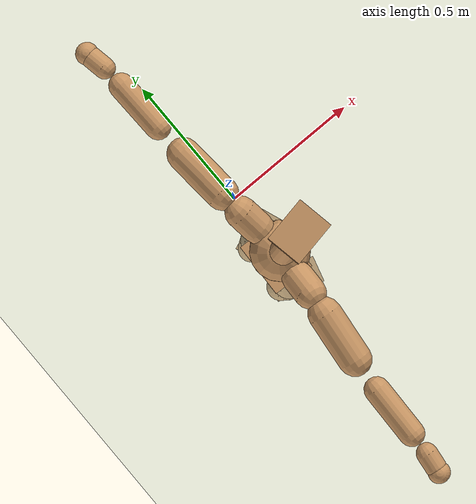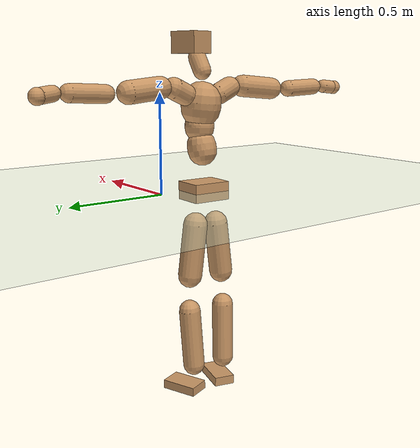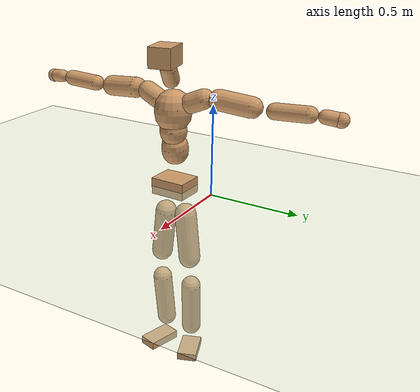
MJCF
<mujoco model="humanoid">
  <compiler coordinate="local" angle="radian"/>
  <default>
    <joint damping="0.0" armature="0.01" stiffness="0.0" limited="true"/>
    <geom conaffinity="1" condim="3" contype="7" margin="0.001" rgba="0.8 0.6 .4 1"/>
  </default>
  <asset>
    <texture type="skybox" builtin="gradient" rgb1=".4 .5 .6" rgb2="0 0 0" width="100" height="100"/>
    <texture builtin="flat" height="1278" mark="cross" markrgb="1 1 1" name="texgeom" random="0.01" rgb1="0.8 0.6 0.4" rgb2="0.8 0.6 0.4" type="cube" width="127"/>
    <texture builtin="checker" height="100" name="texplane" rgb1="0 0 0" rgb2="0.8 0.8 0.8" type="2d" width="100"/>
    <material name="MatPlane" reflectance="0.5" shininess="1" specular="1" texrepeat="60 60" texture="texplane"/>
    <material name="geom" texture="texgeom" texuniform="true"/>
  </asset>
  <worldbody>
    <light cutoff="100" diffuse="1 1 1" dir="-0 0 -1.3" directional="true" exponent="1" pos="0 0 1.3" specular=".1 .1 .1"/>
    <geom conaffinity="1" condim="3" name="floor" pos="0 0 0" rgba="0.8 0.9 0.8 1" size="100 100 .2" type="plane" material="MatPlane"/>
    <body name="Pelvis" pos="-0.0051 -0.249 0.0088">
      <freejoint name="Pelvis"/>
      <geom type="box" contype="1" conaffinity="1" density="500" pos="-0.0132 0.0005 -0.0093" size="0.0788 0.1017 0.0467" quat="0.9998 0.0000 0.0000 -0.0180" name="Pelvis"/>
      <body name="L_Hip" pos="-0.0287 0.0541 -0.089">
        <joint name="L_Hip_x" type="hinge" pos="0 0 0" axis="1 0 0" stiffness="800" damping="80" armature="0.02" range="-180.0000 180.0000"/>
        <joint name="L_Hip_y" type="hinge" pos="0 0 0" axis="0 1 0" stiffness="800" damping="80" armature="0.02" range="-180.0000 180.0000"/>
        <joint name="L_Hip_z" type="hinge" pos="0 0 0" axis="0 0 1" stiffness="800" damping="80" armature="0.02" range="-180.0000 180.0000"/>
        <geom type="capsule" contype="1" conaffinity="1" density="500" fromto="0.0020 0.0105 -0.0904 0.0081 0.0422 -0.3617" size="0.062" name="L_Hip"/>
        <body name="L_Knee" pos="0.0101 0.0527 -0.4521">
          <joint name="L_Knee_x" type="hinge" pos="0 0 0" axis="1 0 0" stiffness="800" damping="80" armature="0.02" range="-180.0000 180.0000"/>
          <joint name="L_Knee_y" type="hinge" pos="0 0 0" axis="0 1 0" stiffness="800" damping="80" armature="0.02" range="-180.0000 180.0000"/>
          <joint name="L_Knee_z" type="hinge" pos="0 0 0" axis="0 0 1" stiffness="800" damping="80" armature="0.02" range="-180.0000 180.0000"/>
          <geom type="capsule" contype="1" conaffinity="1" density="500" fromto="-0.0077 -0.0030 -0.0993 -0.0309 -0.0121 -0.3971" size="0.0561" name="L_Knee"/>
          <body name="L_Ankle" pos="-0.0386 -0.0151 -0.4964">
            <joint name="L_Ankle_x" type="hinge" pos="0 0 0" axis="1 0 0" stiffness="800" damping="80" armature="0.02" range="-180.0000 180.0000"/>
            <joint name="L_Ankle_y" type="hinge" pos="0 0 0" axis="0 1 0" stiffness="800" damping="80" armature="0.02" range="-180.0000 180.0000"/>
            <joint name="L_Ankle_z" type="hinge" pos="0 0 0" axis="0 0 1" stiffness="800" damping="80" armature="0.02" range="-180.0000 180.0000"/>
            <geom type="box" contype="1" conaffinity="1" density="500" pos="0.0663 0.0249 -0.0347" size="0.0946 0.0573 0.0229" quat="0.9839 0.0000 0.0000 0.1789" name="L_Ankle"/>
            <body name="L_Toe" pos="0.1325 0.0499 -0.0693">
              <joint name="L_Toe_x" type="hinge" pos="0 0 0" axis="1 0 0" stiffness="500" damping="50" armature="0.02" range="-180.0000 180.0000"/>
              <joint name="L_Toe_y" type="hinge" pos="0 0 0" axis="0 1 0" stiffness="500" damping="50" armature="0.02" range="-180.0000 180.0000"/>
              <joint name="L_Toe_z" type="hinge" pos="0 0 0" axis="0 0 1" stiffness="500" damping="50" armature="0.02" range="-180.0000 180.0000"/>
              <geom type="box" contype="1" conaffinity="1" density="500" pos="0.0000 0.0000 0.0365" size="0.0011 0.0027 0.0012" quat="0.9831 0.0000 0.0000 0.1829" name="L_Toe"/>
            </body>
          </body>
        </body>
      </body>
      <body name="R_Hip" pos="-0.0252 -0.0565 -0.0982">
        <joint name="R_Hip_x" type="hinge" pos="0 0 0" axis="1 0 0" stiffness="800" damping="80" armature="0.02" range="-180.0000 180.0000"/>
        <joint name="R_Hip_y" type="hinge" pos="0 0 0" axis="0 1 0" stiffness="800" damping="80" armature="0.02" range="-180.0000 180.0000"/>
        <joint name="R_Hip_z" type="hinge" pos="0 0 0" axis="0 0 1" stiffness="800" damping="80" armature="0.02" range="-180.0000 180.0000"/>
        <geom type="capsule" contype="1" conaffinity="1" density="500" fromto="-0.0012 -0.0107 -0.0897 -0.0049 -0.0429 -0.3586" size="0.061" name="R_Hip"/>
        <body name="R_Knee" pos="-0.0062 -0.0537 -0.4483">
          <joint name="R_Knee_x" type="hinge" pos="0 0 0" axis="1 0 0" stiffness="800" damping="80" armature="0.02" range="-180.0000 180.0000"/>
          <joint name="R_Knee_y" type="hinge" pos="0 0 0" axis="0 1 0" stiffness="800" damping="80" armature="0.02" range="-180.0000 180.0000"/>
          <joint name="R_Knee_z" type="hinge" pos="0 0 0" axis="0 0 1" stiffness="800" damping="80" armature="0.02" range="-180.0000 180.0000"/>
          <geom type="capsule" contype="1" conaffinity="1" density="500" fromto="-0.0070 0.0045 -0.0981 -0.0282 0.0178 -0.3925" size="0.056" name="R_Knee"/>
          <body name="R_Ankle" pos="-0.0352 0.0223 -0.4906">
            <joint name="R_Ankle_x" type="hinge" pos="0 0 0" axis="1 0 0" stiffness="800" damping="80" armature="0.02" range="-180.0000 180.0000"/>
            <joint name="R_Ankle_y" type="hinge" pos="0 0 0" axis="0 1 0" stiffness="800" damping="80" armature="0.02" range="-180.0000 180.0000"/>
            <joint name="R_Ankle_z" type="hinge" pos="0 0 0" axis="0 0 1" stiffness="800" damping="80" armature="0.02" range="-180.0000 180.0000"/>
            <geom type="box" contype="1" conaffinity="1" density="500" pos="0.0719 -0.0197 -0.0359" size="0.0999 0.0541 0.0237" quat="0.9911 0.0000 0.0000 -0.1334" name="R_Ankle"/>
            <body name="R_Toe" pos="0.1439 -0.0395 -0.0719">
              <joint name="R_Toe_x" type="hinge" pos="0 0 0" axis="1 0 0" stiffness="500" damping="50" armature="0.02" range="-180.0000 180.0000"/>
              <joint name="R_Toe_y" type="hinge" pos="0 0 0" axis="0 1 0" stiffness="500" damping="50" armature="0.02" range="-180.0000 180.0000"/>
              <joint name="R_Toe_z" type="hinge" pos="0 0 0" axis="0 0 1" stiffness="500" damping="50" armature="0.02" range="-180.0000 180.0000"/>
              <geom type="box" contype="1" conaffinity="1" density="500" pos="0.0000 0.0000 0.0378" size="0.001 0.0026 0.0013" quat="0.9921 0.0000 0.0000 -0.1253" name="R_Toe"/>
            </body>
          </body>
        </body>
      </body>
      <body name="Torso" pos="-0.025 0.0052 0.1311">
        <joint name="Torso_x" type="hinge" pos="0 0 0" axis="1 0 0" stiffness="1000" damping="100" armature="0.02" range="-180.0000 180.0000"/>
        <joint name="Torso_y" type="hinge" pos="0 0 0" axis="0 1 0" stiffness="1000" damping="100" armature="0.02" range="-180.0000 180.0000"/>
        <joint name="Torso_z" type="hinge" pos="0 0 0" axis="0 0 1" stiffness="1000" damping="100" armature="0.02" range="-180.0000 180.0000"/>
        <geom type="capsule" contype="1" conaffinity="1" density="500" fromto="0.0210 0.0031 0.0928 0.0140 0.0021 0.0619" size="0.074" name="Torso"/>
        <body name="Spine" pos="0.0349 0.0052 0.1547">
          <joint name="Spine_x" type="hinge" pos="0 0 0" axis="1 0 0" stiffness="1000" damping="100" armature="0.02" range="-180.0000 180.0000"/>
          <joint name="Spine_y" type="hinge" pos="0 0 0" axis="0 1 0" stiffness="1000" damping="100" armature="0.02" range="-180.0000 180.0000"/>
          <joint name="Spine_z" type="hinge" pos="0 0 0" axis="0 0 1" stiffness="1000" damping="100" armature="0.02" range="-180.0000 180.0000"/>
          <geom type="capsule" contype="1" conaffinity="1" density="500" fromto="0.0011 -0.0013 0.0373 0.0007 -0.0008 0.0249" size="0.075" name="Spine"/>
          <body name="Chest" pos="0.0018 -0.0021 0.0622">
            <joint name="Chest_x" type="hinge" pos="0 0 0" axis="1 0 0" stiffness="1000" damping="100" armature="0.02" range="-180.0000 180.0000"/>
            <joint name="Chest_y" type="hinge" pos="0 0 0" axis="0 1 0" stiffness="1000" damping="100" armature="0.02" range="-180.0000 180.0000"/>
            <joint name="Chest_z" type="hinge" pos="0 0 0" axis="0 0 1" stiffness="1000" damping="100" armature="0.02" range="-180.0000 180.0000"/>
            <geom type="capsule" contype="1" conaffinity="1" density="500" fromto="-0.0097 -0.0050 0.0916 -0.0065 -0.0034 0.0610" size="0.1012" name="Chest"/>
            <body name="Neck" pos="-0.0157 -0.0157 0.2222">
              <joint name="Neck_x" type="hinge" pos="0 0 0" axis="1 0 0" stiffness="500" damping="50" armature="0.02" range="-180.0000 180.0000"/>
              <joint name="Neck_y" type="hinge" pos="0 0 0" axis="0 1 0" stiffness="500" damping="50" armature="0.02" range="-180.0000 180.0000"/>
              <joint name="Neck_z" type="hinge" pos="0 0 0" axis="0 0 1" stiffness="500" damping="50" armature="0.02" range="-180.0000 180.0000"/>
              <geom type="capsule" contype="1" conaffinity="1" density="500" fromto="0.0113 0.0018 0.0210 0.0453 0.0072 0.0841" size="0.0452" name="Neck"/>
              <body name="Head" pos="0.0566 0.009 0.1051">
                <joint name="Head_x" type="hinge" pos="0 0 0" axis="1 0 0" stiffness="500" damping="50" armature="0.02" range="-180.0000 180.0000"/>
                <joint name="Head_y" type="hinge" pos="0 0 0" axis="0 1 0" stiffness="500" damping="50" armature="0.02" range="-180.0000 180.0000"/>
                <joint name="Head_z" type="hinge" pos="0 0 0" axis="0 0 1" stiffness="500" damping="50" armature="0.02" range="-180.0000 180.0000"/>
                <geom type="box" contype="1" conaffinity="1" density="500" pos="0.0293 0.0055 0.0535" size="0.0792 0.0632 0.0541" quat="0.9957 0.0000 0.0000 0.0922" name="Head"/>
              </body>
            </body>
            <body name="L_Thorax" pos="-0.0139 0.0748 0.1191">
              <joint name="L_Thorax_x" type="hinge" pos="0 0 0" axis="1 0 0" stiffness="500" damping="50" armature="0.02" range="-180.0000 180.0000"/>
              <joint name="L_Thorax_y" type="hinge" pos="0 0 0" axis="0 1 0" stiffness="500" damping="50" armature="0.02" range="-180.0000 180.0000"/>
              <joint name="L_Thorax_z" type="hinge" pos="0 0 0" axis="0 0 1" stiffness="500" damping="50" armature="0.02" range="-180.0000 180.0000"/>
              <geom type="capsule" contype="1" conaffinity="1" density="500" fromto="-0.0032 0.0245 0.0105 -0.0130 0.0981 0.0419" size="0.0542" name="L_Thorax"/>
              <body name="L_Shoulder" pos="-0.0162 0.1226 0.0523">
                <joint name="L_Shoulder_x" type="hinge" pos="0 0 0" axis="1 0 0" stiffness="500" damping="50" armature="0.02" range="-720.0000 720.0000"/>
                <joint name="L_Shoulder_y" type="hinge" pos="0 0 0" axis="0 1 0" stiffness="500" damping="50" armature="0.02" range="-720.0000 720.0000"/>
                <joint name="L_Shoulder_z" type="hinge" pos="0 0 0" axis="0 0 1" stiffness="500" damping="50" armature="0.02" range="-720.0000 720.0000"/>
                <geom type="capsule" contype="1" conaffinity="1" density="500" fromto="-0.0047 0.0604 -0.0053 -0.0189 0.2416 -0.0213" size="0.0556" name="L_Shoulder"/>
                <body name="L_Elbow" pos="-0.0236 0.302 -0.0266">
                  <joint name="L_Elbow_x" type="hinge" pos="0 0 0" axis="1 0 0" stiffness="500" damping="50" armature="0.02" range="-720.0000 720.0000"/>
                  <joint name="L_Elbow_y" type="hinge" pos="0 0 0" axis="0 1 0" stiffness="500" damping="50" armature="0.02" range="-720.0000 720.0000"/>
                  <joint name="L_Elbow_z" type="hinge" pos="0 0 0" axis="0 0 1" stiffness="500" damping="50" armature="0.02" range="-720.0000 720.0000"/>
                  <geom type="capsule" contype="1" conaffinity="1" density="500" fromto="-0.0018 0.0599 0.0029 -0.0073 0.2396 0.0116" size="0.0427" name="L_Elbow"/>
                  <body name="L_Wrist" pos="-0.0091 0.2995 0.0144">
                    <joint name="L_Wrist_x" type="hinge" pos="0 0 0" axis="1 0 0" stiffness="300" damping="30" armature="0.02" range="-180.0000 180.0000"/>
                    <joint name="L_Wrist_y" type="hinge" pos="0 0 0" axis="0 1 0" stiffness="300" damping="30" armature="0.02" range="-180.0000 180.0000"/>
                    <joint name="L_Wrist_z" type="hinge" pos="0 0 0" axis="0 0 1" stiffness="300" damping="30" armature="0.02" range="-180.0000 180.0000"/>
                    <geom type="capsule" contype="1" conaffinity="1" density="500" fromto="-0.0035 0.0187 -0.0023 -0.0139 0.0747 -0.0091" size="0.0362" name="L_Wrist"/>
                    <body name="L_Hand" pos="-0.0174 0.0934 -0.0113">
                      <joint name="L_Hand_x" type="hinge" pos="0 0 0" axis="1 0 0" stiffness="300" damping="30" armature="0.02" range="-180.0000 180.0000"/>
                      <joint name="L_Hand_y" type="hinge" pos="0 0 0" axis="0 1 0" stiffness="300" damping="30" armature="0.02" range="-180.0000 180.0000"/>
                      <joint name="L_Hand_z" type="hinge" pos="0 0 0" axis="0 0 1" stiffness="300" damping="30" armature="0.02" range="-180.0000 180.0000"/>
                      <geom type="sphere" contype="1" conaffinity="1" density="500" size="0.0382" pos="0.0000 0.0000 0.0000" name="L_Hand"/>
                    </body>
                  </body>
                </body>
              </body>
            </body>
            <body name="R_Thorax" pos="-0.0188 -0.0842 0.1165">
              <joint name="R_Thorax_x" type="hinge" pos="0 0 0" axis="1 0 0" stiffness="500" damping="50" armature="0.02" range="-180.0000 180.0000"/>
              <joint name="R_Thorax_y" type="hinge" pos="0 0 0" axis="0 1 0" stiffness="500" damping="50" armature="0.02" range="-180.0000 180.0000"/>
              <joint name="R_Thorax_z" type="hinge" pos="0 0 0" axis="0 0 1" stiffness="500" damping="50" armature="0.02" range="-180.0000 180.0000"/>
              <geom type="capsule" contype="1" conaffinity="1" density="500" fromto="-0.0009 -0.0224 0.0107 -0.0035 -0.0895 0.0427" size="0.0537" name="R_Thorax"/>
              <body name="R_Shoulder" pos="-0.0044 -0.1118 0.0534">
                <joint name="R_Shoulder_x" type="hinge" pos="0 0 0" axis="1 0 0" stiffness="500" damping="50" armature="0.02" range="-720.0000 720.0000"/>
                <joint name="R_Shoulder_y" type="hinge" pos="0 0 0" axis="0 1 0" stiffness="500" damping="50" armature="0.02" range="-720.0000 720.0000"/>
                <joint name="R_Shoulder_z" type="hinge" pos="0 0 0" axis="0 0 1" stiffness="500" damping="50" armature="0.02" range="-720.0000 720.0000"/>
                <geom type="capsule" contype="1" conaffinity="1" density="500" fromto="-0.0066 -0.0594 -0.0055 -0.0263 -0.2374 -0.0220" size="0.0564" name="R_Shoulder"/>
                <body name="R_Elbow" pos="-0.0328 -0.2968 -0.0275">
                  <joint name="R_Elbow_x" type="hinge" pos="0 0 0" axis="1 0 0" stiffness="500" damping="50" armature="0.02" range="-720.0000 720.0000"/>
                  <joint name="R_Elbow_y" type="hinge" pos="0 0 0" axis="0 1 0" stiffness="500" damping="50" armature="0.02" range="-720.0000 720.0000"/>
                  <joint name="R_Elbow_z" type="hinge" pos="0 0 0" axis="0 0 1" stiffness="500" damping="50" armature="0.02" range="-720.0000 720.0000"/>
                  <geom type="capsule" contype="1" conaffinity="1" density="500" fromto="-0.0016 -0.0610 0.0022 -0.0063 -0.2438 0.0087" size="0.0432" name="R_Elbow"/>
                  <body name="R_Wrist" pos="-0.0079 -0.3048 0.0108">
                    <joint name="R_Wrist_x" type="hinge" pos="0 0 0" axis="1 0 0" stiffness="300" damping="30" armature="0.02" range="-180.0000 180.0000"/>
                    <joint name="R_Wrist_y" type="hinge" pos="0 0 0" axis="0 1 0" stiffness="300" damping="30" armature="0.02" range="-180.0000 180.0000"/>
                    <joint name="R_Wrist_z" type="hinge" pos="0 0 0" axis="0 0 1" stiffness="300" damping="30" armature="0.02" range="-180.0000 180.0000"/>
                    <geom type="capsule" contype="1" conaffinity="1" density="500" fromto="-0.0022 -0.0186 -0.0018 -0.0089 -0.0744 -0.0071" size="0.0358" name="R_Wrist"/>
                    <body name="R_Hand" pos="-0.0111 -0.093 -0.0089">
                      <joint name="R_Hand_x" type="hinge" pos="0 0 0" axis="1 0 0" stiffness="300" damping="30" armature="0.02" range="-180.0000 180.0000"/>
                      <joint name="R_Hand_y" type="hinge" pos="0 0 0" axis="0 1 0" stiffness="300" damping="30" armature="0.02" range="-180.0000 180.0000"/>
                      <joint name="R_Hand_z" type="hinge" pos="0 0 0" axis="0 0 1" stiffness="300" damping="30" armature="0.02" range="-180.0000 180.0000"/>
                      <geom type="sphere" contype="1" conaffinity="1" density="500" size="0.0376" pos="0.0000 0.0000 0.0000" name="R_Hand"/>
                    </body>
                  </body>
                </body>
              </body>
            </body>
          </body>
        </body>
      </body>
    </body>
  </worldbody>
  <actuator>
    <motor name="L_Hip_x" joint="L_Hip_x" gear="500"/>
    <motor name="L_Hip_y" joint="L_Hip_y" gear="500"/>
    <motor name="L_Hip_z" joint="L_Hip_z" gear="500"/>
    <motor name="L_Knee_x" joint="L_Knee_x" gear="500"/>
    <motor name="L_Knee_y" joint="L_Knee_y" gear="500"/>
    <motor name="L_Knee_z" joint="L_Knee_z" gear="500"/>
    <motor name="L_Ankle_x" joint="L_Ankle_x" gear="500"/>
    <motor name="L_Ankle_y" joint="L_Ankle_y" gear="500"/>
    <motor name="L_Ankle_z" joint="L_Ankle_z" gear="500"/>
    <motor name="L_Toe_x" joint="L_Toe_x" gear="500"/>
    <motor name="L_Toe_y" joint="L_Toe_y" gear="500"/>
    <motor name="L_Toe_z" joint="L_Toe_z" gear="500"/>
    <motor name="R_Hip_x" joint="R_Hip_x" gear="500"/>
    <motor name="R_Hip_y" joint="R_Hip_y" gear="500"/>
    <motor name="R_Hip_z" joint="R_Hip_z" gear="500"/>
    <motor name="R_Knee_x" joint="R_Knee_x" gear="500"/>
    <motor name="R_Knee_y" joint="R_Knee_y" gear="500"/>
    <motor name="R_Knee_z" joint="R_Knee_z" gear="500"/>
    <motor name="R_Ankle_x" joint="R_Ankle_x" gear="500"/>
    <motor name="R_Ankle_y" joint="R_Ankle_y" gear="500"/>
    <motor name="R_Ankle_z" joint="R_Ankle_z" gear="500"/>
    <motor name="R_Toe_x" joint="R_Toe_x" gear="500"/>
    <motor name="R_Toe_y" joint="R_Toe_y" gear="500"/>
    <motor name="R_Toe_z" joint="R_Toe_z" gear="500"/>
    <motor name="Torso_x" joint="Torso_x" gear="500"/>
    <motor name="Torso_y" joint="Torso_y" gear="500"/>
    <motor name="Torso_z" joint="Torso_z" gear="500"/>
    <motor name="Spine_x" joint="Spine_x" gear="500"/>
    <motor name="Spine_y" joint="Spine_y" gear="500"/>
    <motor name="Spine_z" joint="Spine_z" gear="500"/>
    <motor name="Chest_x" joint="Chest_x" gear="500"/>
    <motor name="Chest_y" joint="Chest_y" gear="500"/>
    <motor name="Chest_z" joint="Chest_z" gear="500"/>
    <motor name="Neck_x" joint="Neck_x" gear="500"/>
    <motor name="Neck_y" joint="Neck_y" gear="500"/>
    <motor name="Neck_z" joint="Neck_z" gear="500"/>
    <motor name="Head_x" joint="Head_x" gear="500"/>
    <motor name="Head_y" joint="Head_y" gear="500"/>
    <motor name="Head_z" joint="Head_z" gear="500"/>
    <motor name="L_Thorax_x" joint="L_Thorax_x" gear="500"/>
    <motor name="L_Thorax_y" joint="L_Thorax_y" gear="500"/>
    <motor name="L_Thorax_z" joint="L_Thorax_z" gear="500"/>
    <motor name="L_Shoulder_x" joint="L_Shoulder_x" gear="500"/>
    <motor name="L_Shoulder_y" joint="L_Shoulder_y" gear="500"/>
    <motor name="L_Shoulder_z" joint="L_Shoulder_z" gear="500"/>
    <motor name="L_Elbow_x" joint="L_Elbow_x" gear="500"/>
    <motor name="L_Elbow_y" joint="L_Elbow_y" gear="500"/>
    <motor name="L_Elbow_z" joint="L_Elbow_z" gear="500"/>
    <motor name="L_Wrist_x" joint="L_Wrist_x" gear="500"/>
    <motor name="L_Wrist_y" joint="L_Wrist_y" gear="500"/>
    <motor name="L_Wrist_z" joint="L_Wrist_z" gear="500"/>
    <motor name="L_Hand_x" joint="L_Hand_x" gear="500"/>
    <motor name="L_Hand_y" joint="L_Hand_y" gear="500"/>
    <motor name="L_Hand_z" joint="L_Hand_z" gear="500"/>
    <motor name="R_Thorax_x" joint="R_Thorax_x" gear="500"/>
    <motor name="R_Thorax_y" joint="R_Thorax_y" gear="500"/>
    <motor name="R_Thorax_z" joint="R_Thorax_z" gear="500"/>
    <motor name="R_Shoulder_x" joint="R_Shoulder_x" gear="500"/>
    <motor name="R_Shoulder_y" joint="R_Shoulder_y" gear="500"/>
    <motor name="R_Shoulder_z" joint="R_Shoulder_z" gear="500"/>
    <motor name="R_Elbow_x" joint="R_Elbow_x" gear="500"/>
    <motor name="R_Elbow_y" joint="R_Elbow_y" gear="500"/>
    <motor name="R_Elbow_z" joint="R_Elbow_z" gear="500"/>
    <motor name="R_Wrist_x" joint="R_Wrist_x" gear="500"/>
    <motor name="R_Wrist_y" joint="R_Wrist_y" gear="500"/>
    <motor name="R_Wrist_z" joint="R_Wrist_z" gear="500"/>
    <motor name="R_Hand_x" joint="R_Hand_x" gear="500"/>
    <motor name="R_Hand_y" joint="R_Hand_y" gear="500"/>
    <motor name="R_Hand_z" joint="R_Hand_z" gear="500"/>
  </actuator>
  <contact>
    <exclude body1="Torso" body2="Chest"/>
    <exclude body1="Head" body2="Chest"/>
    <exclude body1="R_Knee" body2="R_Toe"/>
    <exclude body1="R_Knee" body2="L_Ankle"/>
    <exclude body1="R_Knee" body2="L_Toe"/>
    <exclude body1="L_Knee" body2="L_Toe"/>
    <exclude body1="L_Knee" body2="R_Ankle"/>
    <exclude body1="L_Knee" body2="R_Toe"/>
    <exclude body1="L_Shoulder" body2="Chest"/>
    <exclude body1="R_Shoulder" body2="Chest"/>
  </contact>
  <sensor/>
  <size njmax="700" nconmax="700"/>
</mujoco>
